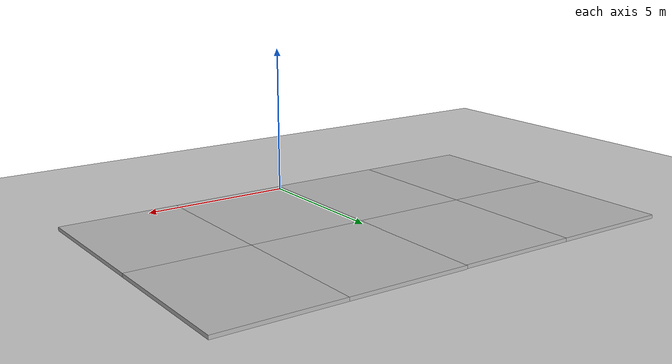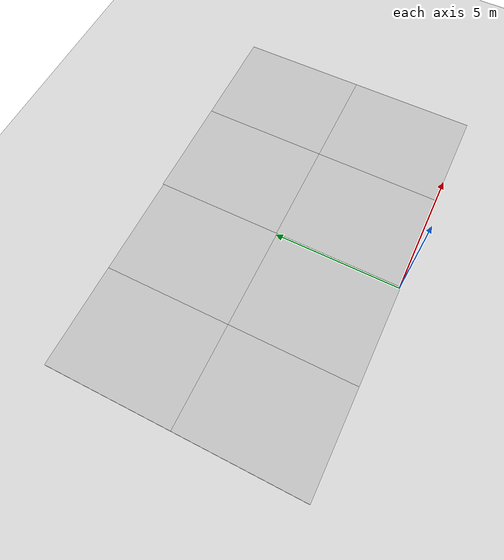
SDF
<sdf version="1.7">
 <world name="crop_and_weed_world">
  <physics type="ode">
   <max_step_size>0.001</max_step_size>
   <real_time_factor>1</real_time_factor>
   <real_time_update_rate>1000</real_time_update_rate>
  </physics>
  <model name="ground_plane">
   <static>1</static>
   <link name="link">
    <collision name="collision">
     <geometry><plane><normal>0 0 1</normal><size>100 100</size></plane></geometry>
     <surface>
      <contact><collide_bitmask>65535</collide_bitmask></contact>
      <friction><ode><mu>100</mu><mu2>50</mu2></ode></friction>
     </surface>
    </collision>
    <visual name="visual">
     <cast_shadows>0</cast_shadows>
     <geometry><plane><normal>0 0 1</normal><size>100 100</size></plane></geometry>
     <material>
      <script><uri>file://media/materials/scripts/gazebo.material</uri><name>Gazebo/Grey</name></script>
     </material>
    </visual>
   </link>
  </model>
  <gravity>0 0 -9.8</gravity>
  <magnetic_field>6e-06 2.3e-05 -4.2e-05</magnetic_field>
  <atmosphere type="adiabatic"/>
  <scene><ambient>0.4 0.4 0.4 1</ambient><background>0.7 0.7 0.7 1</background><shadows>1</shadows></scene>
  <spherical_coordinates>
   <surface_model>EARTH_WGS84</surface_model>
   <latitude_deg>0</latitude_deg>
   <longitude_deg>0</longitude_deg>
   <elevation>0</elevation>
   <heading_deg>0</heading_deg>
  </spherical_coordinates>
  <model name="mud_box">
   <static>1</static>
   <link name="link">
    <collision name="collision"><geometry><box><size>8 10 0.2</size></box></geometry></collision>
    <visual name="visual_1">
     <pose>-2 2.5 0 0 -0 0</pose>
     <cast_shadows>0</cast_shadows>
     <geometry><box><size>4 5 0.2</size></box></geometry>
     <material>
      <script>
       <uri>model://mud_box/materials/scripts</uri>
       <uri>model://mud_box/materials/textures</uri>
       <name>vrc/mud</name>
      </script>
     </material>
    </visual>
    <visual name="visual_2">
     <pose>2 2.5 0 0 -0 0</pose>
     <cast_shadows>0</cast_shadows>
     <geometry><box><size>4 5 0.2</size></box></geometry>
     <material>
      <script>
       <uri>model://mud_box/materials/scripts</uri>
       <uri>model://mud_box/materials/textures</uri>
       <name>vrc/mud</name>
      </script>
     </material>
    </visual>
    <visual name="visual_3">
     <pose>2 -2.5 0 0 -0 0</pose>
     <cast_shadows>0</cast_shadows>
     <geometry><box><size>4 5 0.2</size></box></geometry>
     <material>
      <script>
       <uri>model://mud_box/materials/scripts</uri>
       <uri>model://mud_box/materials/textures</uri>
       <name>vrc/mud</name>
      </script>
     </material>
    </visual>
    <visual name="visual_4">
     <pose>-2 -2.5 0 0 -0 0</pose>
     <cast_shadows>0</cast_shadows>
     <geometry><box><size>4 5 0.2</size></box></geometry>
     <material>
      <script>
       <uri>model://mud_box/materials/scripts</uri>
       <uri>model://mud_box/materials/textures</uri>
       <name>vrc/mud</name>
      </script>
     </material>
    </visual>
   </link>
   <pose>-3.95647 4.97165 0 0 -0 0</pose>
  </model>
  <light name="user_point_light_0" type="point">
   <pose>-3.30292 3.31847 1 0 -0 0</pose>
   <diffuse>0.5 0.5 0.5 1</diffuse>
   <specular>0.1 0.1 0.1 1</specular>
   <attenuation>
    <range>20</range>
    <constant>0.5</constant>
    <linear>0.01</linear>
    <quadratic>0.001</quadratic>
   </attenuation>
   <cast_shadows>0</cast_shadows>
   <direction>0 0 -1</direction>
  </light>
  <model name="mud_box_0">
   <static>1</static>
   <link name="link">
    <collision name="collision"><geometry><box><size>8 10 0.2</size></box></geometry></collision>
    <visual name="visual_1">
     <pose>-2 2.5 0 0 -0 0</pose>
     <cast_shadows>0</cast_shadows>
     <geometry><box><size>4 5 0.2</size></box></geometry>
     <material>
      <script>
       <uri>model://mud_box/materials/scripts</uri>
       <uri>model://mud_box/materials/textures</uri>
       <name>vrc/mud</name>
      </script>
     </material>
    </visual>
    <visual name="visual_2">
     <pose>2 2.5 0 0 -0 0</pose>
     <cast_shadows>0</cast_shadows>
     <geometry><box><size>4 5 0.2</size></box></geometry>
     <material>
      <script>
       <uri>model://mud_box/materials/scripts</uri>
       <uri>model://mud_box/materials/textures</uri>
       <name>vrc/mud</name>
      </script>
     </material>
    </visual>
    <visual name="visual_3">
     <pose>2 -2.5 0 0 -0 0</pose>
     <cast_shadows>0</cast_shadows>
     <geometry><box><size>4 5 0.2</size></box></geometry>
     <material>
      <script>
       <uri>model://mud_box/materials/scripts</uri>
       <uri>model://mud_box/materials/textures</uri>
       <name>vrc/mud</name>
      </script>
     </material>
    </visual>
    <visual name="visual_4">
     <pose>-2 -2.5 0 0 -0 0</pose>
     <cast_shadows>0</cast_shadows>
     <geometry><box><size>4 5 0.2</size></box></geometry>
     <material>
      <script>
       <uri>model://mud_box/materials/scripts</uri>
       <uri>model://mud_box/materials/textures</uri>
       <name>vrc/mud</name>
      </script>
     </material>
    </visual>
   </link>
   <pose>4.02509 5.00179 0 0 -0 0</pose>
  </model>
  <light name="user_point_light_1" type="point">
   <pose>-2.4487 2.80833 1 0 -0 0</pose>
   <diffuse>0.5 0.5 0.5 1</diffuse>
   <specular>0.1 0.1 0.1 1</specular>
   <attenuation>
    <range>20</range>
    <constant>0.5</constant>
    <linear>0.01</linear>
    <quadratic>0.001</quadratic>
   </attenuation>
   <cast_shadows>0</cast_shadows>
   <direction>0 0 -1</direction>
  </light>
  <light name="user_point_light_2" type="point">
   <pose>-0.660473 3.01047 1 0 -0 0</pose>
   <diffuse>0.5 0.5 0.5 1</diffuse>
   <specular>0.1 0.1 0.1 1</specular>
   <attenuation>
    <range>20</range>
    <constant>0.5</constant>
    <linear>0.01</linear>
    <quadratic>0.001</quadratic>
   </attenuation>
   <cast_shadows>0</cast_shadows>
   <direction>0 0 -1</direction>
  </light>
  <light name="sun" type="directional">
   <pose>-0.62531 -0.458273 10 0 -0 0</pose>
   <diffuse>0.8 0.8 0.8 1</diffuse>
   <specular>0.2 0.2 0.2 1</specular>
   <attenuation>
    <range>1000</range>
    <constant>0.9</constant>
    <linear>0.01</linear>
    <quadratic>0.001</quadratic>
   </attenuation>
   <direction>-0.5 0.1 -0.9</direction>
  </light>
 </world>
</sdf>
